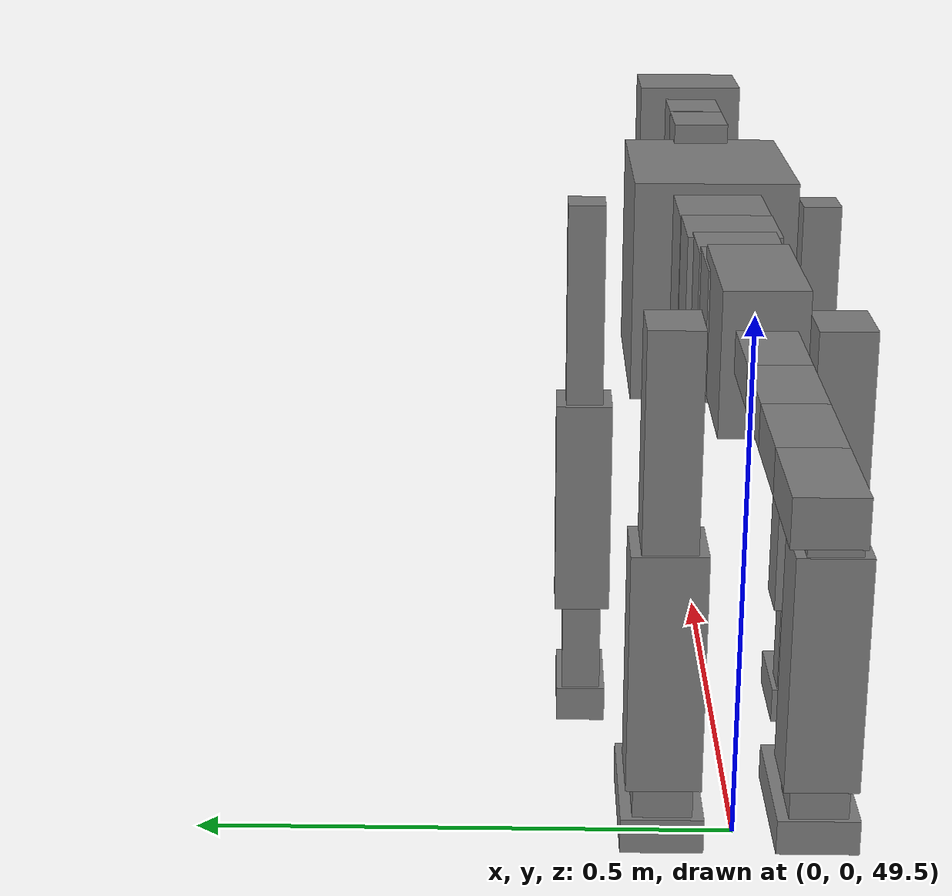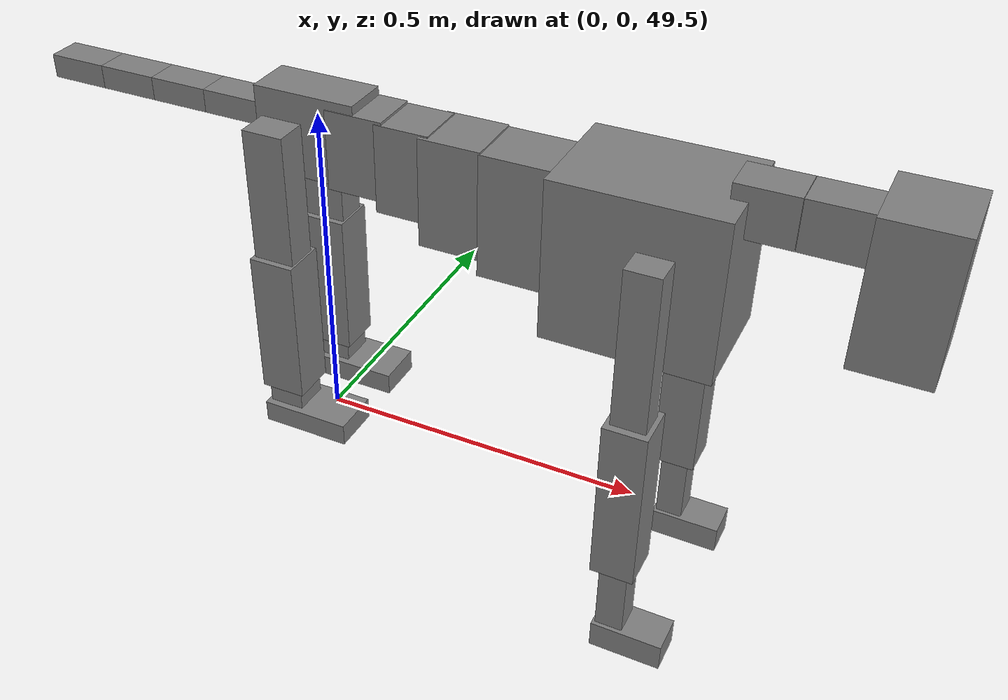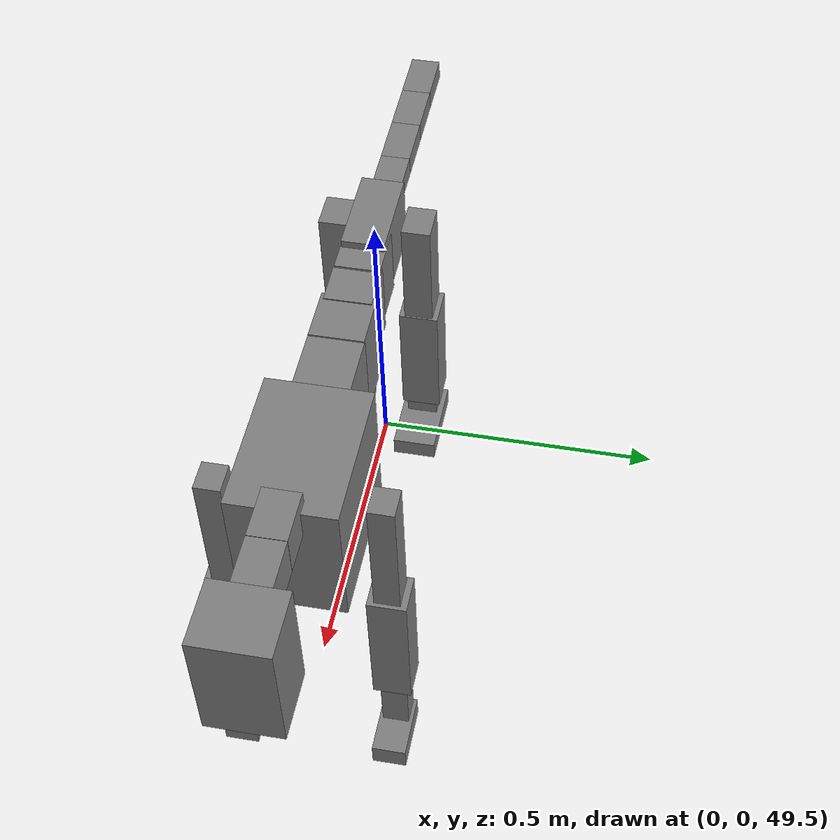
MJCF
<mujoco model="dog">

    <default>
        <joint armature="0.02" stiffness="1" damping="0.2" limited="true"/>
        <geom condim="3" friction="1 0.05 0.05" margin="0.01"/>
        <motor ctrllimited="true" ctrlrange="-1.0 1.0" forcelimited="true" gear="50"/>
    </default>

    <compiler inertiafromgeom="true" angle="radian"/>

    <option timestep="0.016" iterations="50" tolerance="1e-10" solver="Newton" jacobian="dense" cone="pyramidal"/>

    <size nconmax="20000" njmax="60000" nstack="5000000"/>
    <visual>
        <map force="0.1" zfar="30"/>
        <rgba haze="0.15 0.25 0.35 1"/>
        <quality shadowsize="2048"/>
        <global offwidth="800" offheight="800"/>
    </visual>

    <asset>
        <texture type="skybox" builtin="gradient" rgb1="0.3 0.5 0.7" rgb2="0 0 0" width="512" height="512"/>
        <texture name="texplane" type="2d" builtin="checker" rgb1=".2 .3 .4" rgb2=".1 0.15 0.2" width="512" height="512"
                 mark="cross" markrgb=".8 .8 .8"/>
        <texture name="texgeom" type="cube" builtin="flat" mark="cross" width="127" height="1278" rgb1="0.8 0.6 0.4"
                 rgb2="0.8 0.6 0.4" markrgb="1 1 1" random="0.01"/>

        <material name="matplane" reflectance="0.3" texture="texplane" texrepeat="1 1" texuniform="true"/>
        <material name="matgeom" texture="texgeom" texuniform="true" rgba="0.8 0.6 .4 1"/>
    </asset>

    <worldbody>
        <geom name="floor" pos="0 0 0" size="0 0 .25" type="plane" material="matplane" condim="3"/>

        <light directional="false" diffuse=".2 .2 .2" specular="0 0 0" pos="0 0 5" dir="0 0 -1" castshadow="false"/>
        <light mode="targetbodycom" target="torso" directional="false" diffuse=".8 .8 .8" specular="0.3 0.3 0.3"
               pos="0 0 4.0" dir="0 0 -1"/>

        <body name="root" pos="0 0 50">
            <freejoint name="root_1"/>
            <geom type="box" pos="0 0 -0.02" size="0.0774  0.0358  0.063" density="2030"/>

            <body name="spine1" pos="0.054 0 0">
                <joint name="spine1_y" axis="0 1 0" range="0 0.7" limited="true"/>
                <geom type="box" pos="0.02375 0 -0.03" size="0.04375  0.0375  0.05985" density="2030"/>

                <body name="spine2" pos="0.0612 0 0">
                    <joint name="spine2_y" axis="0 1 0" range="-0.15 0.15" limited="true"/>
                    <geom type="box" pos="0.03555  0  -0.04" size="0.04055  0.039  0.06615" density="2030"/>

                    <body name="spine3" pos="0.0730 0 0">
                        <joint name="spine3_y" axis="0 1 0" range="-0.15 0.15" limited="true"/>
                        <geom type="box" pos="0.03555  0  -0.057" size="0.04555  0.0445  0.081" density="2030"/>

                        <body name="spine4" pos="0.0780 0 0">
                            <joint name="spine4_y" axis="0 1 0" range="-0.15 0.15" limited="true"/>
                            <geom type="box" pos="0.05265  0  -0.07" size="0.05265  0.045  0.09135" density="2030"/>

                            <body name="torso" pos="0.1082 0 0">
                                <joint name="torso_y" axis="0 1 0" range="-0.15 0.15" limited="true"/>
                                <geom type="box" pos="0.11925  0  -0.085" size="0.11925  0.085  0.11745"
                                      density="2030"/>

                                <body name="neck1" pos="0.2160  0   0.0180">
                                    <joint name="neck1_y" axis="0 1 0" range="-1.2  -1" limited="true"/>
                                    <geom type="box" pos="0.0423  0  0" size="0.0423  0.03  0.036" density="2325"/>

                                    <body name="neck2" pos="0.0853  0  0">
                                        <joint name="neck2_y" axis="0 1 0" range="0.1  0" limited="true"/>
                                        <geom type="box" pos="0.0423  0  0" size="0.0423  0.03  0.036" density="2325"/>

                                        <body name="head" pos="0.0853  0  0">
                                            <joint name="head_y" axis="0 1 0" range="-0.3  -0.2" limited="true"/>
                                            <geom type="box" pos="0.0531  0  -0.055" size="0.0531  0.06  0.1044"
                                                  density="4030"/>

                                        </body>
                                    </body>
                                </body>

                                <body name="front_shoulder" pos="0.156  0   -0.0480">
                                    <joint name="front_shoulder_y" axis="0 1 0" range="-1 1.5" limited="true"/>
                                    <geom type="box" pos="0 0.13 -0.1034" size="0.0247  0.0211  0.1300" density="1158"/>
                                    <geom type="box" pos="0 -0.13 -0.1034" size="0.0247  0.0211  0.1300"
                                          density="1158"/>

                                    <body name="front_elbow" pos="0  0  -0.2068">
                                        <joint name="front_elbow_y" axis="0 1 0" range="-2 0" limited="true"/>
                                        <geom type="box" pos="0 0.13 -0.1269" size="0.0314  0.0321  0.1269"
                                              density="1081"/>
                                        <geom type="box" pos="0 -0.13 -0.1269" size="0.0314  0.0321  0.1269"
                                              density="1081"/>

                                        <body name="front_wrist" pos="0  0  -0.2538">
                                            <joint name="front_wrist_y" axis="0 1 0" range="-0.2 0" limited="true"/>
                                            <geom type="box" pos="0 0.13 -0.0617" size="0.0203  0.0225  0.0749"
                                                  density="1664"/>
                                            <geom type="box" pos="0 -0.13 -0.0617" size="0.0203  0.0225  0.0749"
                                                  density="1664"/>

                                            <body name="front_finger_end" pos="0  0  -0.1235">
                                                <joint name="front_finger_y" axis="0 1 0" range="-0.4 1"
                                                       limited="true"/>
                                                <geom type="box" pos="0.0287  0.13  -0.0062"
                                                      size="0.0527  0.0287  0.0212" density="1515"/>
                                                <geom type="box" pos="0.0287  -0.13  -0.0062"
                                                      size="0.0527  0.0287  0.0212" density="1515"/>

                                            </body>

                                        </body>
                                    </body>
                                </body>

                            </body>
                        </body>
                    </body>
                </body>
            </body>

            <body name="back_hip" pos="-0.03 0 -0.018">
                <joint name="back_hip_y" axis="0 1 0" range="-1.5 0.3" limited="true"/>
                <geom type="box" pos="0 0.07 -0.0962" size="0.0312  0.0245  0.1190" density="1154"/>
                <geom type="box" pos="0 -0.07 -0.0962" size="0.0312  0.0245  0.1190" density="1154"/>

                <body name="back_knee" pos="0  0  -0.1925">
                    <joint name="back_knee_y" axis="0 1 0" range="0 2.8" limited="true"/>
                    <geom type="box" pos="0 0.07 -0.0972" size="0.0342  0.0338  0.1128" density="1227"/>
                    <geom type="box" pos="0 -0.07 -0.0972" size="0.0342  0.0338  0.1128" density="1227"/>

                    <body name="back_ankle" pos="0  0  -0.1945">
                        <joint name="back_ankle_y" axis="0 1 0" range="-2.2 0" limited="true"/>
                        <geom type="box" pos="0 0.07 -0.0306" size="0.0269  0.0269  0.0419" density="1284"/>
                        <geom type="box" pos="0 -0.07 -0.0306" size="0.0269  0.0269  0.0419" density="1284"/>

                        <body name="back_toe_end" pos="0  0  -0.0613">
                            <joint name="back_toe_y" axis="0 1 0" range="-0.4 1" limited="true"/>
                            <geom type="box" pos="0.0375  0.07  -0.0019" size="0.0687  0.0375  0.0169" density="1515"/>
                            <geom type="box" pos="0.0375  -0.07  -0.0019" size="0.0687  0.0375  0.0169" density="1515"/>

                        </body>
                    </body>
                </body>
            </body>

            <body name="tail1" pos="-0.074 0 -0.006">
                <joint name="tail1_y" axis="0 1 0" range="-0.2 0.2" limited="true"/>
                <geom type="box" pos="-0.0536  0  0" size="0.045  0.025  0.0175" density="1587"/>

                <body name="tail2" pos="-0.09 0 0">
                    <joint name="tail2_y" axis="0 1 0" range="-0.2 0.2" limited="true"/>
                    <geom type="box" pos="-0.0536  0  0" size="0.045  0.025  0.0175" density="1587"/>

                    <body name="tail3" pos="-0.09 0 0">
                        <joint name="tail3_y" axis="0 1 0" range="-0.2 0.2" limited="true"/>
                        <geom type="box" pos="-0.0536  0  0" size="0.045  0.025  0.0175" density="1587"/>

                        <body name="tail4" pos="-0.09 0 0">
                            <joint name="tail4_y" axis="0 1 0" range="-0.2 0.2" limited="true"/>
                            <geom type="box" pos="-0.0536  0  0" size="0.045  0.025  0.0175" density="1587"/>

                        </body>
                    </body>
                </body>
            </body>
        </body>
    </worldbody>

    <actuator>
        <motor joint="spine1_y" forcerange="-150 150     "/>
        <motor joint="spine2_y" forcerange="-150 150     "/>
        <motor joint="spine3_y" forcerange="-150 150     "/>
        <motor joint="spine4_y" forcerange="-150 150     "/>
        <motor joint="torso_y" forcerange="-150 150     "/>
        <motor joint="neck1_y" forcerange="-100 100       "/>
        <motor joint="neck2_y" forcerange="-100 100       "/>
        <motor joint="head_y" forcerange="-150 150       "/>
        <motor joint="front_shoulder_y" forcerange="-135.94 104.81"/>
        <motor joint="front_elbow_y" forcerange="-165.49 167.69"/>
        <motor joint="front_wrist_y" forcerange="-116.60 63.78"/>
        <motor joint="front_finger_y" forcerange="-22.23 91.03"/>
        <motor joint="back_hip_y" forcerange="-304.20 221.92"/>
        <motor joint="back_knee_y" forcerange="-387.35 303.63"/>
        <motor joint="back_angle_y" forcerange="-87.79 243.11"/>
        <motor joint="back_toe_y" forcerange="-110.38 109.24"/>
        <motor joint="tail1_y" forcerange="-50 50     "/>
        <motor joint="tail2_y" forcerange="-50 50     "/>
        <motor joint="tail3_y" forcerange="-50 50     "/>
        <motor joint="tail4_y" forcerange="-50 50     "/>
    </actuator>
</mujoco>
